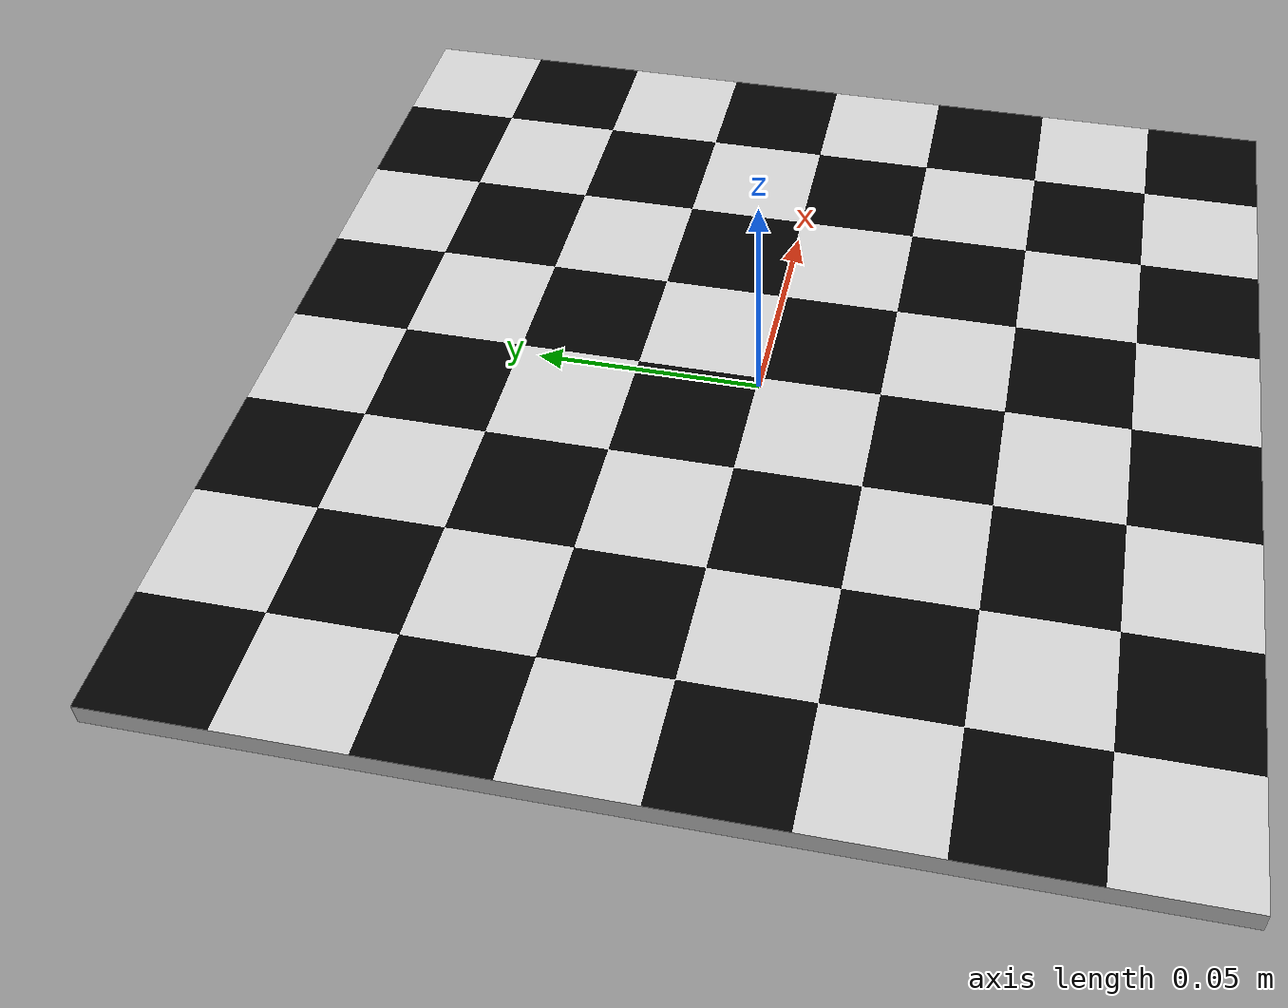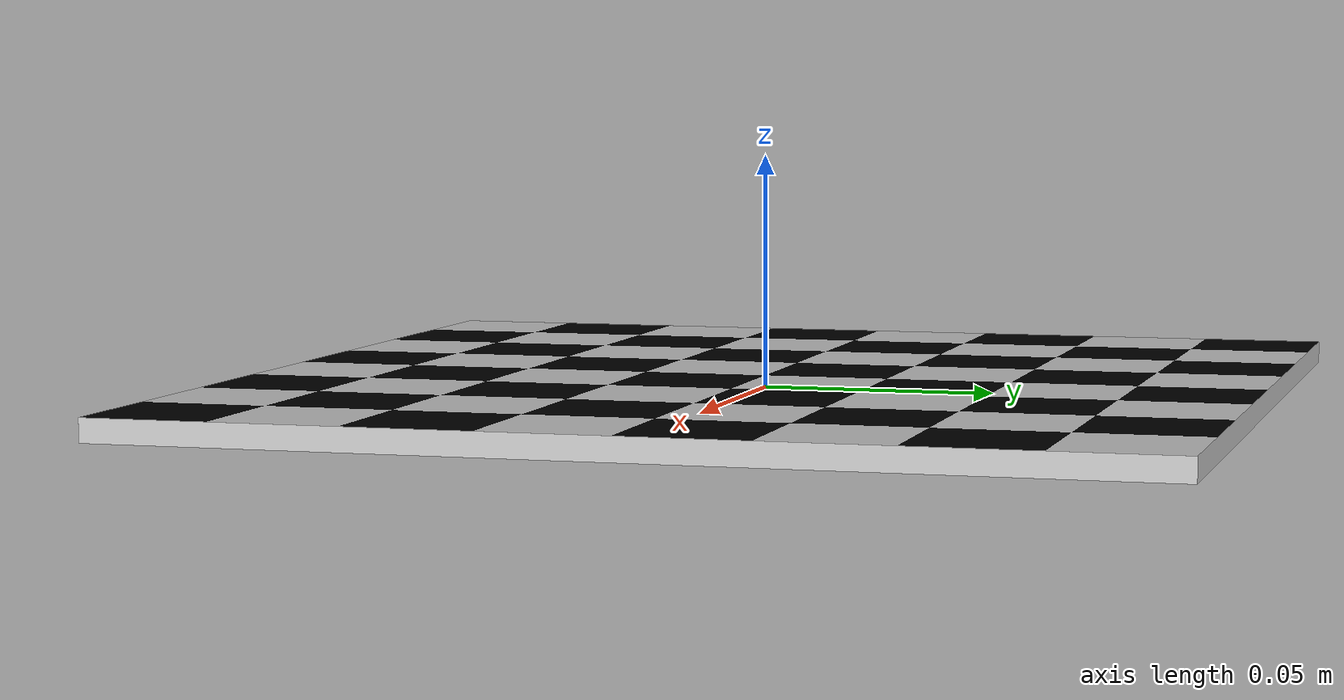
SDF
<?xml version='1.0'?>
<sdf version='1.6'>
    <model name='chessboard'>
        <static>1</static>
        <allow_auto_disable>1</allow_auto_disable>
        <link name='link'>
        <inertial>
            <mass>0.2</mass>
            <inertia>
                <ixx>0.166667</ixx>
                <ixy>0</ixy>
                <ixz>0</ixz>
                <iyy>0.166667</iyy>
                <iyz>0</iyz>
                <izz>0.166667</izz>
            </inertia>
            <pose>0 0 0 0 0 0</pose>
        </inertial>
        <pose>0 0 0 0 0 0</pose>
        <gravity>1</gravity>
        <self_collide>0</self_collide>
        <kinematic>0</kinematic>
        <enable_wind>0</enable_wind>
        <visual name='visual'>
            <pose>0 0 0 0 0 0</pose>
            <geometry>
                 <mesh>
                    <uri>model://chessboard/meshes/chessboard.dae</uri>
                    <scale>1 1 1</scale>
                 </mesh>
            </geometry>
            <transparency>0</transparency>
            <cast_shadows>1</cast_shadows>
        </visual>
        <collision name='collision'>
            <laser_retro>0</laser_retro>
            <max_contacts>10</max_contacts>
            <pose>0 0 0 0 0 0</pose>
            <geometry>
                <box>
                    <size>0.216 0.216 0.005</size>
                </box>
            </geometry>
            <surface>
                <friction>
                    <ode>
                        <mu>1</mu>
                        <mu2>1</mu2>
                        <fdir1>0 0 0</fdir1>
                        <slip1>0</slip1>
                        <slip2>0</slip2>
                    </ode>
                    <torsional>
                        <coefficient>1</coefficient>
                        <patch_radius>0</patch_radius>
                        <surface_radius>0</surface_radius>
                        <use_patch_radius>1</use_patch_radius>
                        <ode>
                            <slip>0</slip>
                        </ode>
                    </torsional>
                </friction>
                <bounce>
                    <restitution_coefficient>0</restitution_coefficient>
                    <threshold>1e+06</threshold>
                </bounce>
                <contact>
                    <collide_without_contact>0</collide_without_contact>
                    <collide_without_contact_bitmask>1</collide_without_contact_bitmask>
                    <collide_bitmask>1</collide_bitmask>
                    <ode>
                        <soft_cfm>0</soft_cfm>
                        <soft_erp>0.2</soft_erp>
                        <kp>1e+13</kp>
                        <kd>1</kd>
                        <max_vel>0.01</max_vel>
                        <min_depth>0</min_depth>
                    </ode>
                    <bullet>
                        <split_impulse>1</split_impulse>
                        <split_impulse_penetration_threshold>-0.01</split_impulse_penetration_threshold>
                        <soft_cfm>0</soft_cfm>
                        <soft_erp>0.2</soft_erp>
                        <kp>1e+13</kp>
                        <kd>1</kd>
                    </bullet>
                </contact>
            </surface>
        </collision>
      </link>
    </model>
</sdf>
